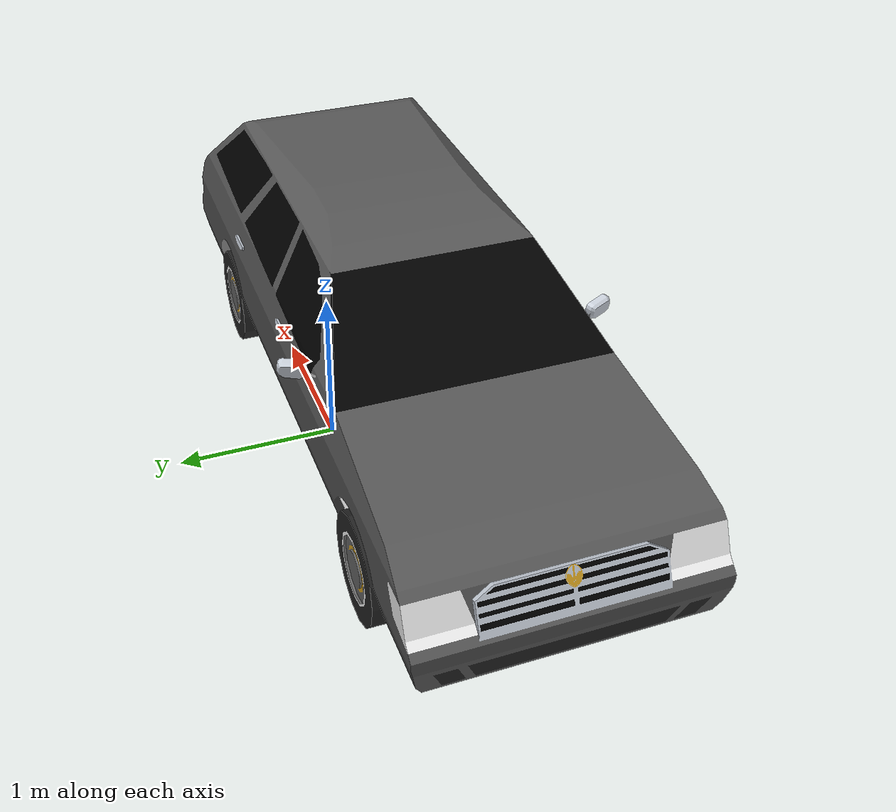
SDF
<?xml version="1.0" ?>
<sdf version="1.5">
  <model name="car_gray_1">
    <link name="link">
      <pose>0 0 0 0 0 0</pose>
      <collision name="collision">
        <geometry>
          <mesh>
            <uri>model://car_gray_1/meshes/model.dae</uri>
          </mesh>
        </geometry>
      </collision>
      <visual name="visual">
        <geometry>
          <mesh>
            <uri>model://car_gray_1/meshes/model.dae</uri>
          </mesh>
        </geometry>
      </visual>
    </link>
    <static>1</static>
  </model>
</sdf>
